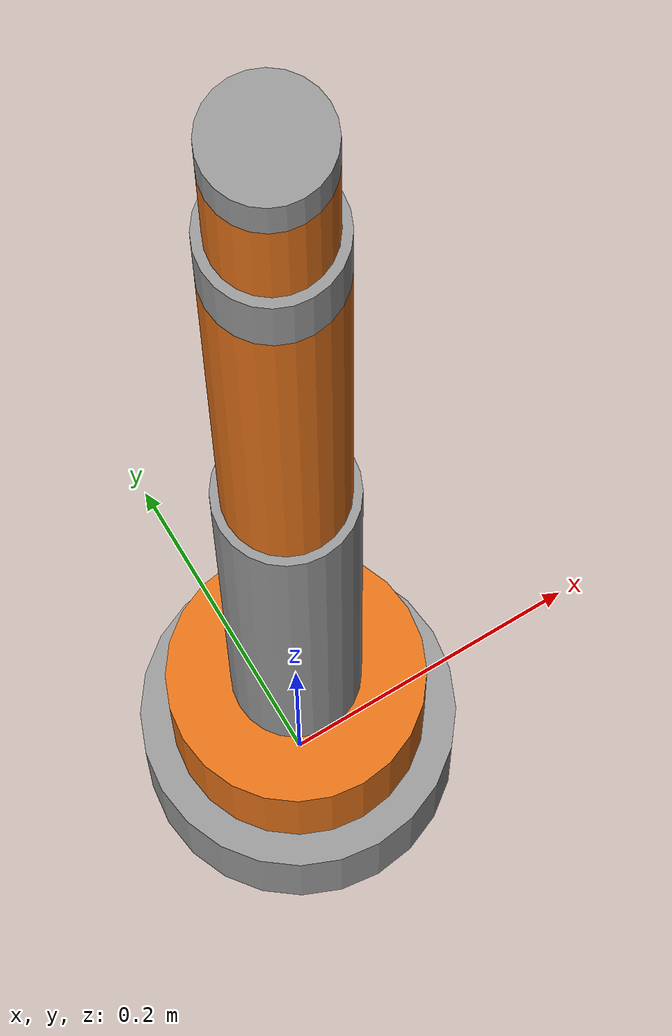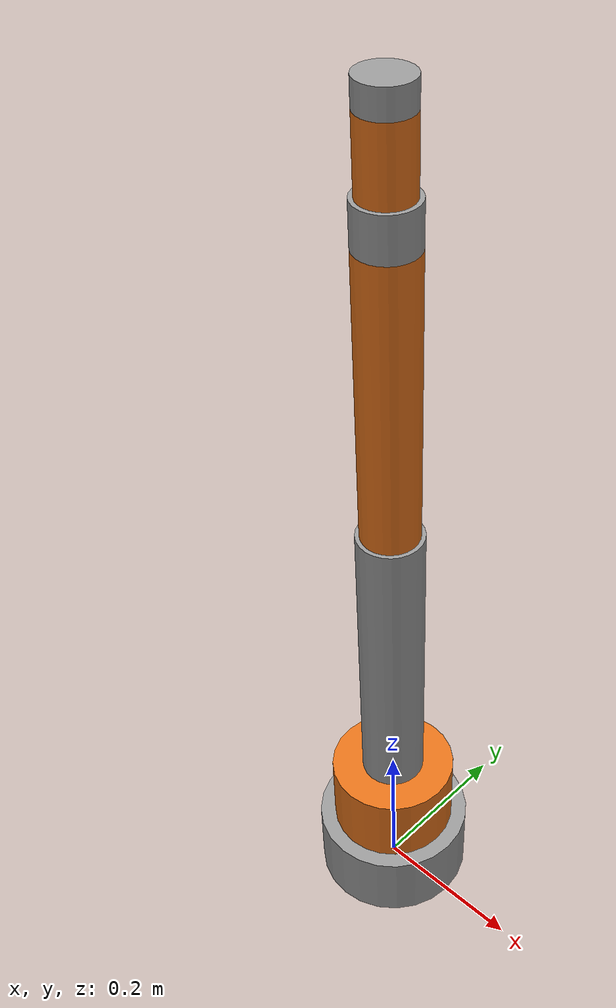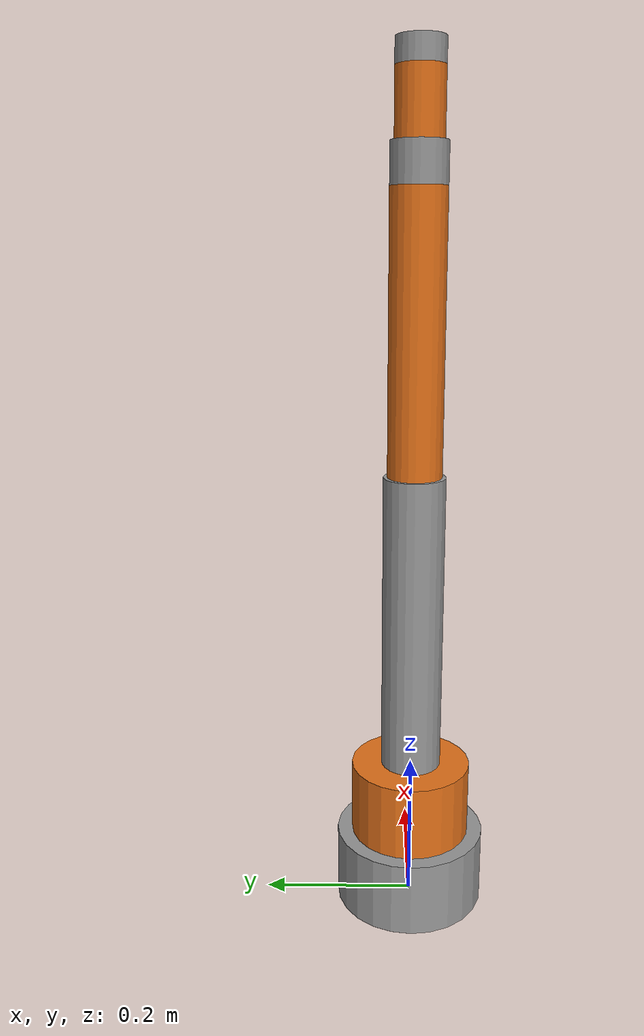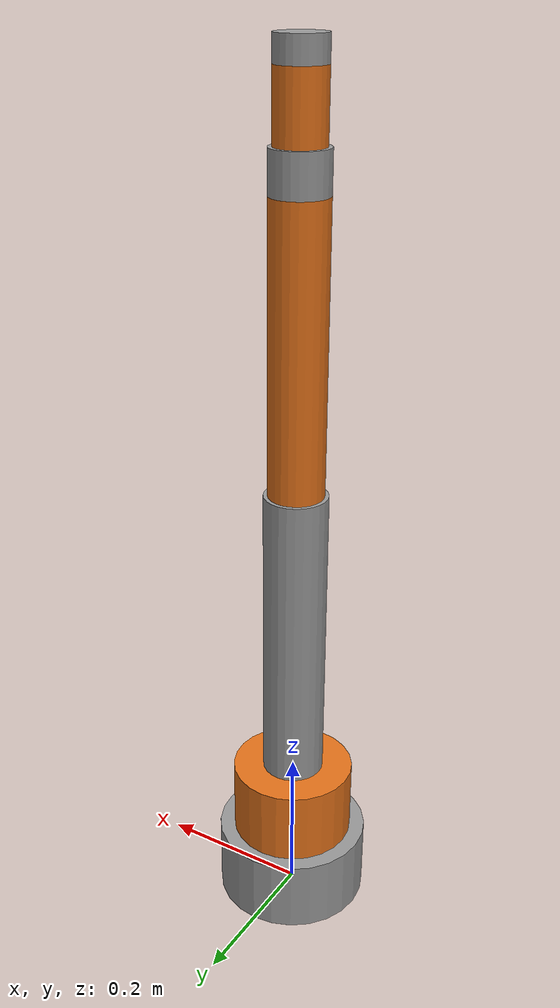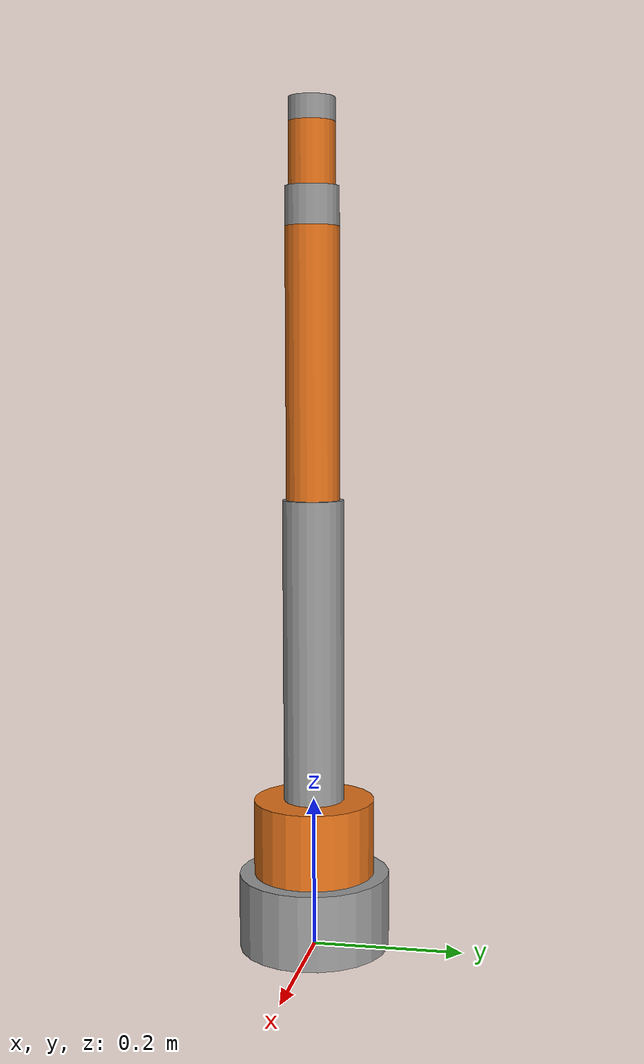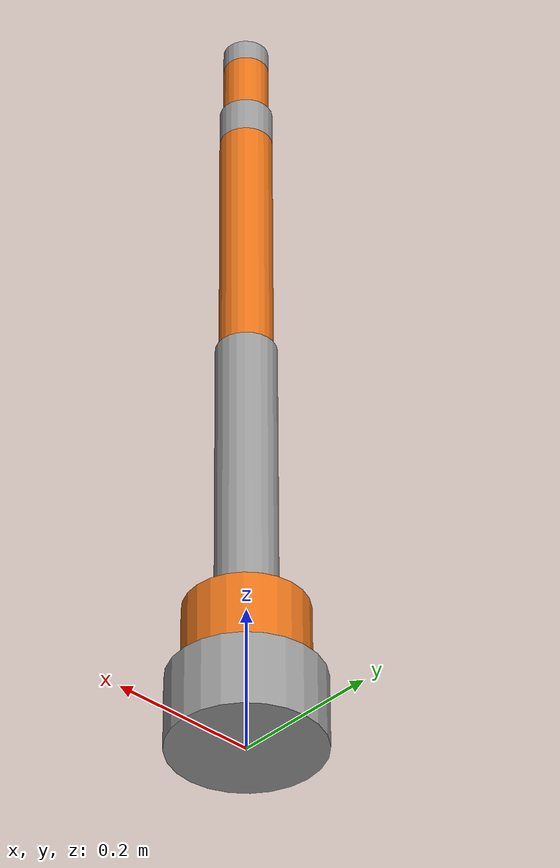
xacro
<?xml version="1.0"?>
<robot name="robotic_arm" xmlns:xacro="http://www.ros.org/wiki/xacro">

  <!-- hardware: mock | gazebo | real (docs/decisions/0016). controllers_file: absolute path to the
       controllers YAML, needed only by the Gazebo plugin (passed by arm_bringup). -->
  <xacro:arg name="hardware" default="mock"/>
  <xacro:arg name="controllers_file" default=""/>

  <xacro:include filename="inertial_macros.xacro"/>
  <xacro:include filename="arm.ros2_control.xacro"/>

  <!-- Provisional dimensions [m] and masses [kg] -->
  <xacro:property name="base_radius"   value="0.10"/>
  <xacro:property name="base_height"   value="0.10"/>
  <xacro:property name="base_mass"     value="1.5"/>

  <xacro:property name="link1_radius"  value="0.08"/>
  <xacro:property name="link1_length"  value="0.10"/>
  <xacro:property name="link1_mass"    value="0.8"/>

  <xacro:property name="link2_radius"  value="0.04"/>
  <xacro:property name="link2_length"  value="0.40"/>
  <xacro:property name="link2_mass"    value="1.0"/>

  <xacro:property name="link3_radius"  value="0.035"/>
  <xacro:property name="link3_length"  value="0.35"/>
  <xacro:property name="link3_mass"    value="0.8"/>

  <xacro:property name="link4_radius"  value="0.035"/>
  <xacro:property name="link4_length"  value="0.05"/>
  <xacro:property name="link4_mass"    value="0.2"/>

  <xacro:property name="link5_radius"  value="0.03"/>
  <xacro:property name="link5_length"  value="0.08"/>
  <xacro:property name="link5_mass"    value="0.2"/>

  <xacro:property name="link6_radius"  value="0.03"/>
  <xacro:property name="link6_length"  value="0.03"/>
  <xacro:property name="link6_mass"    value="0.1"/>

  <!-- Joint limits. Velocity: servo 300 deg/s through a 1:36 reduction ~ 8.3 deg/s (docs/BOM). -->
  <xacro:property name="joint_velocity" value="0.145"/>
  <xacro:property name="joint_effort"   value="60.0"/>

  <material name="arm_grey"><color rgba="0.6 0.6 0.6 1.0"/></material>
  <material name="arm_orange"><color rgba="0.9 0.45 0.1 1.0"/></material>

  <!-- A link drawn as a cylinder that starts at the link origin and extends along +z. -->
  <xacro:macro name="cylinder_link" params="name radius length mass material">
    <link name="${name}">
      <visual>
        <origin xyz="0 0 ${length / 2.0}" rpy="0 0 0"/>
        <geometry><cylinder radius="${radius}" length="${length}"/></geometry>
        <material name="${material}"/>
      </visual>
      <collision>
        <origin xyz="0 0 ${length / 2.0}" rpy="0 0 0"/>
        <geometry><cylinder radius="${radius}" length="${length}"/></geometry>
      </collision>
      <xacro:cylinder_inertial mass="${mass}" radius="${radius}" length="${length}">
        <origin xyz="0 0 ${length / 2.0}" rpy="0 0 0"/>
      </xacro:cylinder_inertial>
    </link>
  </xacro:macro>

  <!-- Revolute joint placed at the tip (+z) of the parent link. -->
  <xacro:macro name="arm_joint" params="name parent child offset axis lower upper">
    <joint name="${name}" type="revolute">
      <parent link="${parent}"/>
      <child link="${child}"/>
      <origin xyz="0 0 ${offset}" rpy="0 0 0"/>
      <axis xyz="${axis}"/>
      <limit lower="${lower}" upper="${upper}" effort="${joint_effort}" velocity="${joint_velocity}"/>
    </joint>
  </xacro:macro>

  <!-- World anchor so the model can be fixed in simulation. -->
  <link name="world"/>
  <joint name="world_to_base" type="fixed">
    <parent link="world"/>
    <child link="base_link"/>
    <origin xyz="0 0 0" rpy="0 0 0"/>
  </joint>

  <xacro:cylinder_link name="base_link" radius="${base_radius}"  length="${base_height}"  mass="${base_mass}"  material="arm_grey"/>
  <xacro:cylinder_link name="link_1"    radius="${link1_radius}" length="${link1_length}" mass="${link1_mass}" material="arm_orange"/>
  <xacro:cylinder_link name="link_2"    radius="${link2_radius}" length="${link2_length}" mass="${link2_mass}" material="arm_grey"/>
  <xacro:cylinder_link name="link_3"    radius="${link3_radius}" length="${link3_length}" mass="${link3_mass}" material="arm_orange"/>
  <xacro:cylinder_link name="link_4"    radius="${link4_radius}" length="${link4_length}" mass="${link4_mass}" material="arm_grey"/>
  <xacro:cylinder_link name="link_5"    radius="${link5_radius}" length="${link5_length}" mass="${link5_mass}" material="arm_orange"/>
  <xacro:cylinder_link name="link_6"    radius="${link6_radius}" length="${link6_length}" mass="${link6_mass}" material="arm_grey"/>

  <!-- joint_1: base yaw, joint_2: shoulder pitch, joint_3: elbow pitch,
       joint_4: wrist roll, joint_5: wrist pitch, joint_6: flange roll -->
  <xacro:arm_joint name="joint_1" parent="base_link" child="link_1" offset="${base_height}"  axis="0 0 1" lower="${-pi}"     upper="${pi}"/>
  <xacro:arm_joint name="joint_2" parent="link_1"    child="link_2" offset="${link1_length}" axis="0 1 0" lower="${-pi / 2}" upper="${pi / 2}"/>
  <xacro:arm_joint name="joint_3" parent="link_2"    child="link_3" offset="${link2_length}" axis="0 1 0" lower="${-pi / 2}" upper="${pi / 2}"/>
  <xacro:arm_joint name="joint_4" parent="link_3"    child="link_4" offset="${link3_length}" axis="0 0 1" lower="${-pi}"     upper="${pi}"/>
  <xacro:arm_joint name="joint_5" parent="link_4"    child="link_5" offset="${link4_length}" axis="0 1 0" lower="${-pi / 2}" upper="${pi / 2}"/>
  <xacro:arm_joint name="joint_6" parent="link_5"    child="link_6" offset="${link5_length}" axis="0 0 1" lower="${-pi}"     upper="${pi}"/>

  <!-- Tool frame at the flange face (ROS-Industrial convention). -->
  <link name="tool0"/>
  <joint name="link_6_to_tool0" type="fixed">
    <parent link="link_6"/>
    <child link="tool0"/>
    <origin xyz="0 0 ${link6_length}" rpy="0 0 0"/>
  </joint>

  <xacro:arm_ros2_control hardware="$(arg hardware)" controllers_file="$(arg controllers_file)"
                          joints="${['joint_1', 'joint_2', 'joint_3', 'joint_4', 'joint_5', 'joint_6']}"/>

</robot>

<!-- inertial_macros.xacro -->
<!-- Inertia of simple primitives. Used until real mass properties come from CAD. -->
<robot xmlns:xacro="http://www.ros.org/wiki/xacro">

  <!-- Solid cylinder along the local z axis, origin at its centre. -->
  <xacro:macro name="cylinder_inertial" params="mass radius length *origin">
    <inertial>
      <xacro:insert_block name="origin"/>
      <mass value="${mass}"/>
      <inertia ixx="${mass * (3 * radius * radius + length * length) / 12.0}" ixy="0.0" ixz="0.0"
               iyy="${mass * (3 * radius * radius + length * length) / 12.0}" iyz="0.0"
               izz="${mass * radius * radius / 2.0}"/>
    </inertial>
  </xacro:macro>

</robot>
